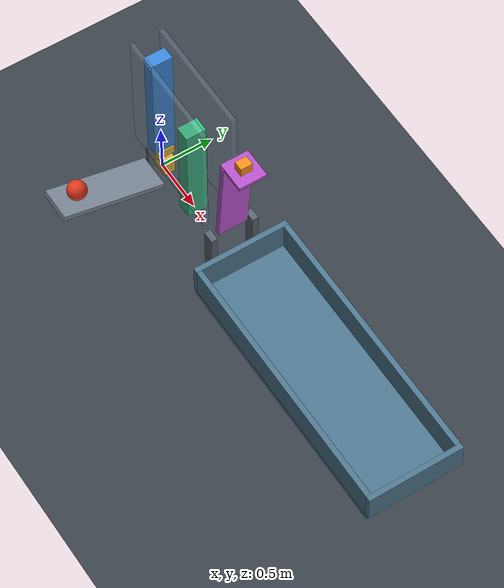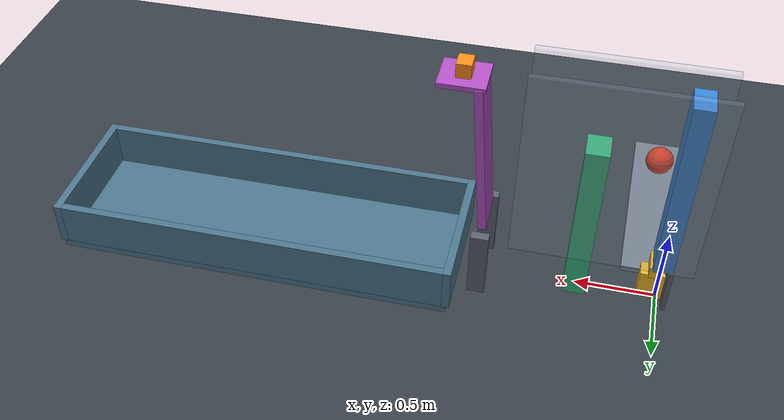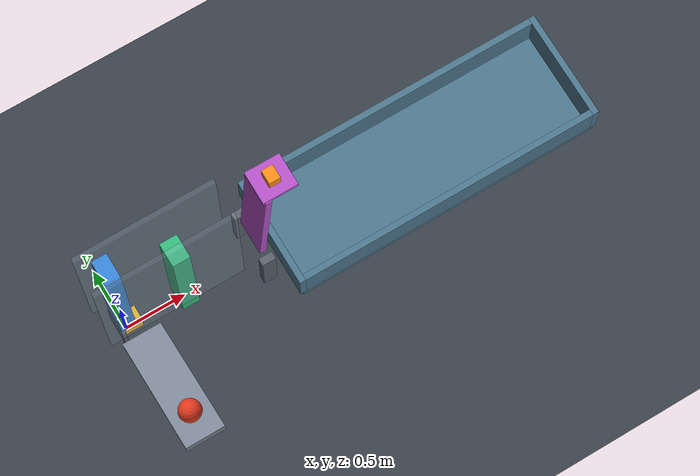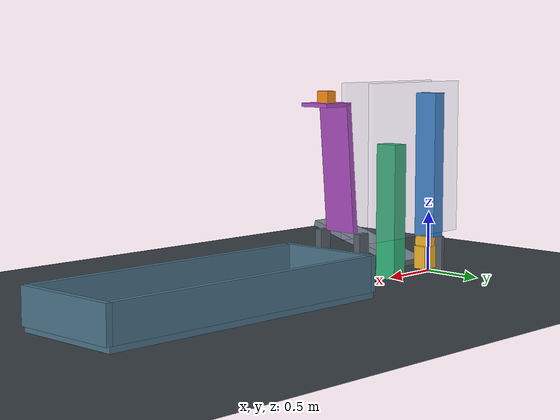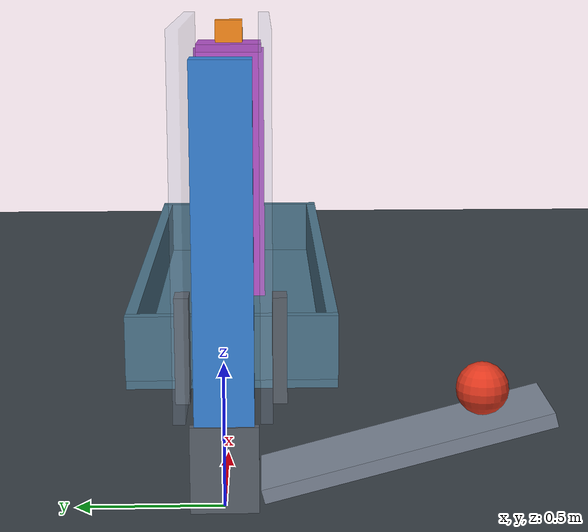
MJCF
<mujoco model="passive_bridge_chain">
  <compiler angle="degree" inertiafromgeom="true"/>
  <option timestep="0.002" gravity="0 0 -9.81" integrator="implicitfast" iterations="100" cone="elliptic"/>
  <size njmax="2000" nconmax="400"/>

  <visual>
    <global azimuth="135" elevation="-22"/>
    <headlight ambient="0.4 0.4 0.4" diffuse="0.7 0.7 0.7" specular="0.2 0.2 0.2"/>
  </visual>

  <worldbody>
    <light name="overhead" pos="0 -2 5" dir="0 0 -1" diffuse="0.8 0.8 0.8"/>
    <camera name="overview" pos="4 -6 3.5" xyaxes="0.832 0.555 0 -0.240 0.360 0.902"/>

    <geom name="floor" type="plane" size="8 8 0.1" friction="0.8 0.015 0.018" condim="6" rgba="0.22 0.25 0.28 1"/>

    <!-- The ball begins 0.8 m along the ramp from its downhill edge. -->
    <body name="ramp" pos="0.07 -0.609433 0.195261" euler="-15 0 0">
      <geom name="ramp_surface" type="box" size="0.16 0.50 0.025" friction="0.7 0.003 0.0005" condim="6" rgba="0.48 0.52 0.58 1"/>
    </body>

    <body name="ball" pos="0.07 -0.869447 0.383988">
      <freejoint name="ball_free"/>
      <geom name="ball_sphere" type="sphere" size="0.09" mass="0.8" friction="0.7 0.003 0.0005" condim="6" solref="0.008 1" rgba="0.88 0.22 0.12 1"/>
    </body>

    <!-- Bridge1 initially stands on a rear bearing and the removable key. -->
    <body name="bridge1_bearing" pos="-0.05 0 0.15">
      <geom name="bridge1_bearing_block" type="box" size="0.015 0.115 0.15" friction="0.8 0.005 0.0001" rgba="0.35 0.38 0.42 1"/>
    </body>

    <body name="key" pos="0.045 0 0.15">
      <joint name="key_slide" type="slide" axis="0 1 0" limited="true" range="0 0.45" damping="0.04" frictionloss="0.02"/>
      <geom name="key_paddle" type="box" pos="0 0 -0.025" size="0.075 0.055 0.095" mass="0.045" priority="1" friction="0.04 0.001 0.0001" solref="0.008 1" rgba="0.96 0.72 0.15 1"/>
      <geom name="key_support" type="box" pos="0 0 0.11" size="0.03 0.08 0.04" mass="0.025" priority="1" friction="0.04 0.001 0.0001" solref="0.008 1" rgba="0.96 0.72 0.15 1"/>
    </body>

    <body name="bridge1" pos="0 0 0.9">
      <freejoint name="bridge1_free"/>
      <geom name="bridge1_block" type="box" size="0.06 0.10 0.60" mass="0.8" friction="0.65 0.005 0.0001" solref="0.008 1" rgba="0.22 0.52 0.85 1"/>
    </body>

    <!-- Side guides prevent sideways collapse, without obstructing key travel. -->
    <body name="bridge_guides" pos="0.38 0 0.975">
      <geom name="bridge_guides_front" type="box" pos="0 -0.14 0" size="0.55 0.02 0.625" priority="1" friction="0.08 0.001 0.0001" rgba="0.65 0.75 0.85 0.20"/>
      <geom name="bridge_guides_back" type="box" pos="0 0.14 0" size="0.55 0.02 0.625" priority="1" friction="0.08 0.001 0.0001" rgba="0.65 0.75 0.85 0.20"/>
    </body>

    <body name="bridge2" pos="0.50 0 0.55">
      <freejoint name="bridge2_free"/>
      <geom name="bridge2_block" type="box" size="0.07 0.095 0.55" mass="0.6" friction="0.65 0.005 0.0001" solref="0.008 1" rgba="0.20 0.72 0.48 1"/>
    </body>

    <!-- Hinge friction holds the loaded flap until bridge2 strikes it. -->
    <body name="flap" pos="1.10 0 0.45" euler="0 5 0">
      <joint name="flap_hinge" type="hinge" axis="0 1 0" limited="true" range="0 90" damping="0.04" frictionloss="0.45" armature="0.002"/>
      <geom name="flap_blade" type="box" pos="0 0 0.50" size="0.025 0.14 0.50" mass="0.25" friction="0.18 0.003 0.0001" solref="0.008 1" rgba="0.70 0.32 0.78 1"/>
      <geom name="flap_payload_shelf" type="box" pos="0.09961947 0 1.00871557" euler="0 -5 0" size="0.14 0.13 0.015" mass="0.04" friction="0.18 0.003 0.0001" solref="0.008 1" rgba="0.70 0.32 0.78 1"/>
    </body>

    <body name="flap_mount" pos="1.10 0 0.225">
      <geom name="flap_mount_front" type="box" pos="0 -0.20 0" size="0.055 0.03 0.225" rgba="0.35 0.38 0.42 1"/>
      <geom name="flap_mount_back" type="box" pos="0 0.20 0" size="0.055 0.03 0.225" rgba="0.35 0.38 0.42 1"/>
    </body>

    <body name="payload" pos="1.28715574 0 1.50619470">
      <freejoint name="payload_free"/>
      <geom name="payload_block" type="box" size="0.045 0.055 0.045" mass="0.09" friction="0.28 0.005 0.0005" solref="0.008 1" rgba="1 0.55 0.10 1"/>
    </body>

    <body name="bin" pos="2.515 0 0">
      <geom name="bin_bottom" type="box" pos="0 0 0.0225" size="1.265 0.45 0.0225" friction="0.9 0.02 0.005" solref="0.008 1" rgba="0.30 0.46 0.55 1"/>
      <geom name="bin_left_wall" type="box" pos="-1.265 0 0.185" size="0.025 0.45 0.14" friction="0.9 0.02 0.005" solref="0.008 1" rgba="0.30 0.46 0.55 1"/>
      <geom name="bin_right_wall" type="box" pos="1.265 0 0.185" size="0.025 0.45 0.14" friction="0.9 0.02 0.005" solref="0.008 1" rgba="0.30 0.46 0.55 1"/>
      <geom name="bin_front_wall" type="box" pos="0 -0.425 0.185" size="1.24 0.025 0.14" friction="0.9 0.02 0.005" solref="0.008 1" rgba="0.30 0.46 0.55 1"/>
      <geom name="bin_back_wall" type="box" pos="0 0.425 0.185" size="1.24 0.025 0.14" friction="0.9 0.02 0.005" solref="0.008 1" rgba="0.30 0.46 0.55 1"/>
    </body>
  </worldbody>

  <keyframe>
    <key name="start"/>
  </keyframe>
</mujoco>
